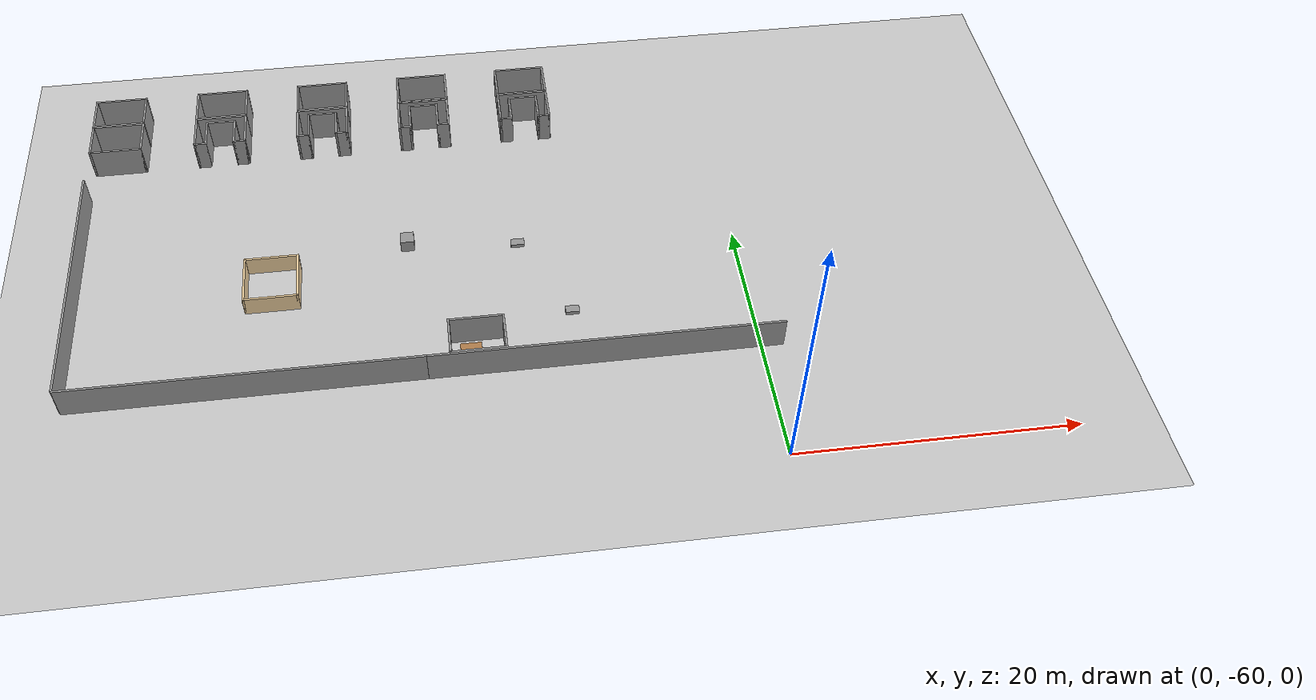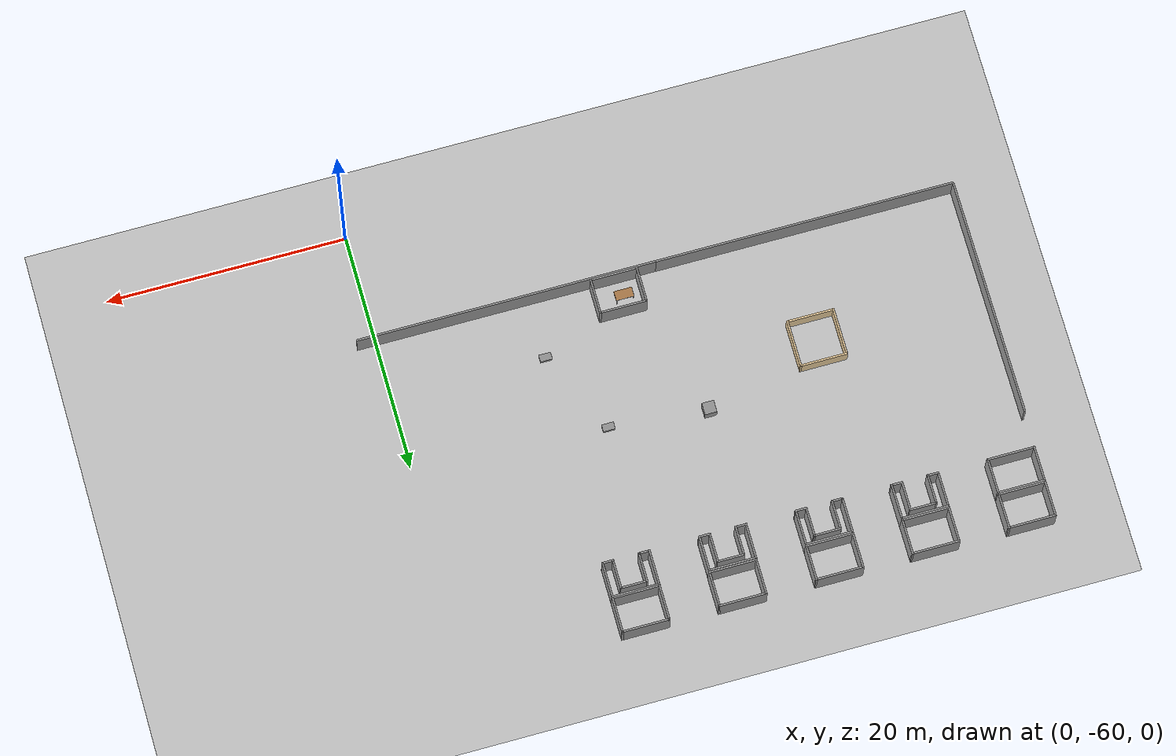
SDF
<sdf version="1.6">
 <world name="default">
  <model name="ground_plane">
   <static>1</static>
   <link name="link">
    <collision name="collision">
     <geometry><plane><normal>0 0 1</normal><size>105 105</size></plane></geometry>
     <surface>
      <contact><collide_bitmask>65535</collide_bitmask></contact>
      <friction><ode><mu>100</mu><mu2>50</mu2></ode></friction>
     </surface>
    </collision>
    <visual name="visual">
     <cast_shadows>0</cast_shadows>
     <geometry><plane><normal>0 0 1</normal><size>105 105</size></plane></geometry>
     <material>
      <script><uri>file://media/materials/scripts/gazebo.material</uri><name>Gazebo/Grey</name></script>
     </material>
    </visual>
   </link>
  </model>
  <model name="base3x4_26">
   <pose>-46.3516 -23.2162 0 0 -0 0</pose>
   <link name="Wall_18">
    <collision name="Wall_18_Collision">
     <geometry><box><size>3 0.15 2.5</size></box></geometry>
     <pose>0 0 1.25 0 -0 0</pose>
    </collision>
    <visual name="Wall_18_Visual">
     <pose>0 0 1.25 0 -0 0</pose>
     <geometry><box><size>3 0.15 2.5</size></box></geometry>
     <material>
      <script><uri>file://media/materials/scripts/gazebo.material</uri><name>Gazebo/Grey</name></script>
      <ambient>1 1 1 1</ambient>
     </material>
     <meta><layer>0</layer></meta>
    </visual>
    <pose>-1.925 -0 0 0 -0 -1.5708</pose>
   </link>
   <link name="Wall_19">
    <collision name="Wall_19_Collision">
     <geometry><box><size>4 0.15 2.5</size></box></geometry>
     <pose>0 0 1.25 0 -0 0</pose>
    </collision>
    <visual name="Wall_19_Visual">
     <pose>0 0 1.25 0 -0 0</pose>
     <geometry><box><size>4 0.15 2.5</size></box></geometry>
     <material>
      <script><uri>file://media/materials/scripts/gazebo.material</uri><name>Gazebo/Grey</name></script>
      <ambient>1 1 1 1</ambient>
     </material>
     <meta><layer>0</layer></meta>
    </visual>
    <pose>-0 -1.425 0 0 -0 0</pose>
   </link>
   <link name="Wall_20">
    <collision name="Wall_20_Collision">
     <geometry><box><size>3 0.15 2.5</size></box></geometry>
     <pose>0 0 1.25 0 -0 0</pose>
    </collision>
    <visual name="Wall_20_Visual">
     <pose>0 0 1.25 0 -0 0</pose>
     <geometry><box><size>3 0.15 2.5</size></box></geometry>
     <material>
      <script><uri>file://media/materials/scripts/gazebo.material</uri><name>Gazebo/Grey</name></script>
      <ambient>1 1 1 1</ambient>
     </material>
     <meta><layer>0</layer></meta>
    </visual>
    <pose>1.925 -0 0 0 -0 1.5708</pose>
   </link>
   <link name="Wall_21">
    <collision name="Wall_21_Collision">
     <geometry><box><size>4 0.15 2.5</size></box></geometry>
     <pose>0 0 1.25 0 -0 0</pose>
    </collision>
    <visual name="Wall_21_Visual">
     <pose>0 0 1.25 0 -0 0</pose>
     <geometry><box><size>4 0.15 2.5</size></box></geometry>
     <material>
      <script><uri>file://media/materials/scripts/gazebo.material</uri><name>Gazebo/Grey</name></script>
      <ambient>1 1 1 1</ambient>
     </material>
     <meta><layer>0</layer></meta>
    </visual>
    <pose>-0 1.425 0 0 -0 3.14159</pose>
   </link>
   <static>1</static>
  </model>
  <model name="base3x4_34">
   <pose>-38.3558 -23.2346 0 0 -0 0</pose>
   <link name="Wall_18">
    <collision name="Wall_18_Collision">
     <geometry><box><size>3 0.15 2.5</size></box></geometry>
     <pose>0 0 1.25 0 -0 0</pose>
    </collision>
    <visual name="Wall_18_Visual">
     <pose>0 0 1.25 0 -0 0</pose>
     <geometry><box><size>3 0.15 2.5</size></box></geometry>
     <material>
      <script><uri>file://media/materials/scripts/gazebo.material</uri><name>Gazebo/Grey</name></script>
      <ambient>1 1 1 1</ambient>
     </material>
     <meta><layer>0</layer></meta>
    </visual>
    <pose>-1.925 -0 0 0 -0 -1.5708</pose>
   </link>
   <link name="Wall_19">
    <collision name="Wall_19_Collision">
     <geometry><box><size>4 0.15 2.5</size></box></geometry>
     <pose>0 0 1.25 0 -0 0</pose>
    </collision>
    <visual name="Wall_19_Visual">
     <pose>0 0 1.25 0 -0 0</pose>
     <geometry><box><size>4 0.15 2.5</size></box></geometry>
     <material>
      <script><uri>file://media/materials/scripts/gazebo.material</uri><name>Gazebo/Grey</name></script>
      <ambient>1 1 1 1</ambient>
     </material>
     <meta><layer>0</layer></meta>
    </visual>
    <pose>-0 -1.425 0 0 -0 0</pose>
   </link>
   <link name="Wall_20">
    <collision name="Wall_20_Collision">
     <geometry><box><size>3 0.15 2.5</size></box></geometry>
     <pose>0 0 1.25 0 -0 0</pose>
    </collision>
    <visual name="Wall_20_Visual">
     <pose>0 0 1.25 0 -0 0</pose>
     <geometry><box><size>3 0.15 2.5</size></box></geometry>
     <material>
      <script><uri>file://media/materials/scripts/gazebo.material</uri><name>Gazebo/Grey</name></script>
      <ambient>1 1 1 1</ambient>
     </material>
     <meta><layer>0</layer></meta>
    </visual>
    <pose>1.925 -0 0 0 -0 1.5708</pose>
   </link>
   <link name="Wall_21">
    <collision name="Wall_21_Collision">
     <geometry><box><size>4 0.15 2.5</size></box></geometry>
     <pose>0 0 1.25 0 -0 0</pose>
    </collision>
    <visual name="Wall_21_Visual">
     <pose>0 0 1.25 0 -0 0</pose>
     <geometry><box><size>4 0.15 2.5</size></box></geometry>
     <material>
      <script><uri>file://media/materials/scripts/gazebo.material</uri><name>Gazebo/Grey</name></script>
      <ambient>1 1 1 1</ambient>
     </material>
     <meta><layer>0</layer></meta>
    </visual>
    <pose>-0 1.425 0 0 -0 3.14159</pose>
   </link>
   <static>1</static>
  </model>
  <model name="base3x4_31">
   <pose>-30.4046 -23.2308 0 0 -0 0</pose>
   <link name="Wall_18">
    <collision name="Wall_18_Collision">
     <geometry><box><size>3 0.15 2.5</size></box></geometry>
     <pose>0 0 1.25 0 -0 0</pose>
    </collision>
    <visual name="Wall_18_Visual">
     <pose>0 0 1.25 0 -0 0</pose>
     <geometry><box><size>3 0.15 2.5</size></box></geometry>
     <material>
      <script><uri>file://media/materials/scripts/gazebo.material</uri><name>Gazebo/Grey</name></script>
      <ambient>1 1 1 1</ambient>
     </material>
     <meta><layer>0</layer></meta>
    </visual>
    <pose>-1.925 -0 0 0 -0 -1.5708</pose>
   </link>
   <link name="Wall_19">
    <collision name="Wall_19_Collision">
     <geometry><box><size>4 0.15 2.5</size></box></geometry>
     <pose>0 0 1.25 0 -0 0</pose>
    </collision>
    <visual name="Wall_19_Visual">
     <pose>0 0 1.25 0 -0 0</pose>
     <geometry><box><size>4 0.15 2.5</size></box></geometry>
     <material>
      <script><uri>file://media/materials/scripts/gazebo.material</uri><name>Gazebo/Grey</name></script>
      <ambient>1 1 1 1</ambient>
     </material>
     <meta><layer>0</layer></meta>
    </visual>
    <pose>-0 -1.425 0 0 -0 0</pose>
   </link>
   <link name="Wall_20">
    <collision name="Wall_20_Collision">
     <geometry><box><size>3 0.15 2.5</size></box></geometry>
     <pose>0 0 1.25 0 -0 0</pose>
    </collision>
    <visual name="Wall_20_Visual">
     <pose>0 0 1.25 0 -0 0</pose>
     <geometry><box><size>3 0.15 2.5</size></box></geometry>
     <material>
      <script><uri>file://media/materials/scripts/gazebo.material</uri><name>Gazebo/Grey</name></script>
      <ambient>1 1 1 1</ambient>
     </material>
     <meta><layer>0</layer></meta>
    </visual>
    <pose>1.925 -0 0 0 -0 1.5708</pose>
   </link>
   <link name="Wall_21">
    <collision name="Wall_21_Collision">
     <geometry><box><size>4 0.15 2.5</size></box></geometry>
     <pose>0 0 1.25 0 -0 0</pose>
    </collision>
    <visual name="Wall_21_Visual">
     <pose>0 0 1.25 0 -0 0</pose>
     <geometry><box><size>4 0.15 2.5</size></box></geometry>
     <material>
      <script><uri>file://media/materials/scripts/gazebo.material</uri><name>Gazebo/Grey</name></script>
      <ambient>1 1 1 1</ambient>
     </material>
     <meta><layer>0</layer></meta>
    </visual>
    <pose>-0 1.425 0 0 -0 3.14159</pose>
   </link>
   <static>1</static>
  </model>
  <model name="unit_box_2">
   <pose>-24.3587 -38.1586 0.5 0 -0 0</pose>
   <link name="link">
    <inertial>
     <mass>1</mass>
     <inertia>
      <ixx>0.166667</ixx>
      <ixy>0</ixy>
      <ixz>0</ixz>
      <iyy>0.166667</iyy>
      <iyz>0</iyz>
      <izz>0.166667</izz>
     </inertia>
    </inertial>
    <collision name="collision"><geometry><box><size>1 1 1</size></box></geometry></collision>
    <visual name="visual">
     <geometry><box><size>1 1 1</size></box></geometry>
     <material>
      <script><name>Gazebo/Grey</name><uri>file://media/materials/scripts/gazebo.material</uri></script>
     </material>
    </visual>
   </link>
  </model>
  <model name="base3x4_53">
   <pose>-22.3998 -23.2187 0 0 -0 0</pose>
   <link name="Wall_18">
    <collision name="Wall_18_Collision">
     <geometry><box><size>3 0.15 2.5</size></box></geometry>
     <pose>0 0 1.25 0 -0 0</pose>
    </collision>
    <visual name="Wall_18_Visual">
     <pose>0 0 1.25 0 -0 0</pose>
     <geometry><box><size>3 0.15 2.5</size></box></geometry>
     <material>
      <script><uri>file://media/materials/scripts/gazebo.material</uri><name>Gazebo/Grey</name></script>
      <ambient>1 1 1 1</ambient>
     </material>
     <meta><layer>0</layer></meta>
    </visual>
    <pose>-1.925 -0 0 0 -0 -1.5708</pose>
   </link>
   <link name="Wall_19">
    <collision name="Wall_19_Collision">
     <geometry><box><size>4 0.15 2.5</size></box></geometry>
     <pose>0 0 1.25 0 -0 0</pose>
    </collision>
    <visual name="Wall_19_Visual">
     <pose>0 0 1.25 0 -0 0</pose>
     <geometry><box><size>4 0.15 2.5</size></box></geometry>
     <material>
      <script><uri>file://media/materials/scripts/gazebo.material</uri><name>Gazebo/Grey</name></script>
      <ambient>1 1 1 1</ambient>
     </material>
     <meta><layer>0</layer></meta>
    </visual>
    <pose>-0 -1.425 0 0 -0 0</pose>
   </link>
   <link name="Wall_20">
    <collision name="Wall_20_Collision">
     <geometry><box><size>3 0.15 2.5</size></box></geometry>
     <pose>0 0 1.25 0 -0 0</pose>
    </collision>
    <visual name="Wall_20_Visual">
     <pose>0 0 1.25 0 -0 0</pose>
     <geometry><box><size>3 0.15 2.5</size></box></geometry>
     <material>
      <script><uri>file://media/materials/scripts/gazebo.material</uri><name>Gazebo/Grey</name></script>
      <ambient>1 1 1 1</ambient>
     </material>
     <meta><layer>0</layer></meta>
    </visual>
    <pose>1.925 -0 0 0 -0 1.5708</pose>
   </link>
   <link name="Wall_21">
    <collision name="Wall_21_Collision">
     <geometry><box><size>4 0.15 2.5</size></box></geometry>
     <pose>0 0 1.25 0 -0 0</pose>
    </collision>
    <visual name="Wall_21_Visual">
     <pose>0 0 1.25 0 -0 0</pose>
     <geometry><box><size>4 0.15 2.5</size></box></geometry>
     <material>
      <script><uri>file://media/materials/scripts/gazebo.material</uri><name>Gazebo/Grey</name></script>
      <ambient>1 1 1 1</ambient>
     </material>
     <meta><layer>0</layer></meta>
    </visual>
    <pose>-0 1.425 0 0 -0 3.14159</pose>
   </link>
   <static>1</static>
  </model>
  <model name="base3x4_64">
   <pose>-14.4197 -23.2316 0 0 -0 0</pose>
   <link name="Wall_18">
    <collision name="Wall_18_Collision">
     <geometry><box><size>3 0.15 2.5</size></box></geometry>
     <pose>0 0 1.25 0 -0 0</pose>
    </collision>
    <visual name="Wall_18_Visual">
     <pose>0 0 1.25 0 -0 0</pose>
     <geometry><box><size>3 0.15 2.5</size></box></geometry>
     <material>
      <script><uri>file://media/materials/scripts/gazebo.material</uri><name>Gazebo/Grey</name></script>
      <ambient>1 1 1 1</ambient>
     </material>
     <meta><layer>0</layer></meta>
    </visual>
    <pose>-1.925 -0 0 0 -0 -1.5708</pose>
   </link>
   <link name="Wall_19">
    <collision name="Wall_19_Collision">
     <geometry><box><size>4 0.15 2.5</size></box></geometry>
     <pose>0 0 1.25 0 -0 0</pose>
    </collision>
    <visual name="Wall_19_Visual">
     <pose>0 0 1.25 0 -0 0</pose>
     <geometry><box><size>4 0.15 2.5</size></box></geometry>
     <material>
      <script><uri>file://media/materials/scripts/gazebo.material</uri><name>Gazebo/Grey</name></script>
      <ambient>1 1 1 1</ambient>
     </material>
     <meta><layer>0</layer></meta>
    </visual>
    <pose>-0 -1.425 0 0 -0 0</pose>
   </link>
   <link name="Wall_20">
    <collision name="Wall_20_Collision">
     <geometry><box><size>3 0.15 2.5</size></box></geometry>
     <pose>0 0 1.25 0 -0 0</pose>
    </collision>
    <visual name="Wall_20_Visual">
     <pose>0 0 1.25 0 -0 0</pose>
     <geometry><box><size>3 0.15 2.5</size></box></geometry>
     <material>
      <script><uri>file://media/materials/scripts/gazebo.material</uri><name>Gazebo/Grey</name></script>
      <ambient>1 1 1 1</ambient>
     </material>
     <meta><layer>0</layer></meta>
    </visual>
    <pose>1.925 -0 0 0 -0 1.5708</pose>
   </link>
   <link name="Wall_21">
    <collision name="Wall_21_Collision">
     <geometry><box><size>4 0.15 2.5</size></box></geometry>
     <pose>0 0 1.25 0 -0 0</pose>
    </collision>
    <visual name="Wall_21_Visual">
     <pose>0 0 1.25 0 -0 0</pose>
     <geometry><box><size>4 0.15 2.5</size></box></geometry>
     <material>
      <script><uri>file://media/materials/scripts/gazebo.material</uri><name>Gazebo/Grey</name></script>
      <ambient>1 1 1 1</ambient>
     </material>
     <meta><layer>0</layer></meta>
    </visual>
    <pose>-0 1.425 0 0 -0 3.14159</pose>
   </link>
   <static>1</static>
  </model>
  <model name="base3x4_37">
   <pose>-19.8731 -49.167 0 0 -0 0</pose>
   <link name="Wall_18">
    <collision name="Wall_18_Collision">
     <geometry><box><size>3 0.15 2.5</size></box></geometry>
     <pose>0 0 1.25 0 -0 0</pose>
    </collision>
    <visual name="Wall_18_Visual">
     <pose>0 0 1.25 0 -0 0</pose>
     <geometry><box><size>3 0.15 2.5</size></box></geometry>
     <material>
      <script><uri>file://media/materials/scripts/gazebo.material</uri><name>Gazebo/Grey</name></script>
      <ambient>1 1 1 1</ambient>
     </material>
     <meta><layer>0</layer></meta>
    </visual>
    <pose>-1.925 -0 0 0 -0 -1.5708</pose>
   </link>
   <link name="Wall_19">
    <collision name="Wall_19_Collision">
     <geometry><box><size>4 0.15 2.5</size></box></geometry>
     <pose>0 0 1.25 0 -0 0</pose>
    </collision>
    <visual name="Wall_19_Visual">
     <pose>0 0 1.25 0 -0 0</pose>
     <geometry><box><size>4 0.15 2.5</size></box></geometry>
     <material>
      <script><uri>file://media/materials/scripts/gazebo.material</uri><name>Gazebo/Grey</name></script>
      <ambient>1 1 1 1</ambient>
     </material>
     <meta><layer>0</layer></meta>
    </visual>
    <pose>-0 -1.425 0 0 -0 0</pose>
   </link>
   <link name="Wall_20">
    <collision name="Wall_20_Collision">
     <geometry><box><size>3 0.15 2.5</size></box></geometry>
     <pose>0 0 1.25 0 -0 0</pose>
    </collision>
    <visual name="Wall_20_Visual">
     <pose>0 0 1.25 0 -0 0</pose>
     <geometry><box><size>3 0.15 2.5</size></box></geometry>
     <material>
      <script><uri>file://media/materials/scripts/gazebo.material</uri><name>Gazebo/Grey</name></script>
      <ambient>1 1 1 1</ambient>
     </material>
     <meta><layer>0</layer></meta>
    </visual>
    <pose>1.925 -0 0 0 -0 1.5708</pose>
   </link>
   <link name="Wall_21">
    <collision name="Wall_21_Collision">
     <geometry><box><size>4 0.15 2.5</size></box></geometry>
     <pose>0 0 1.25 0 -0 0</pose>
    </collision>
    <visual name="Wall_21_Visual">
     <pose>0 0 1.25 0 -0 0</pose>
     <geometry><box><size>4 0.15 2.5</size></box></geometry>
     <material>
      <script><uri>file://media/materials/scripts/gazebo.material</uri><name>Gazebo/Grey</name></script>
      <ambient>1 1 1 1</ambient>
     </material>
     <meta><layer>0</layer></meta>
    </visual>
    <pose>-0 1.425 0 0 -0 3.14159</pose>
   </link>
   <static>1</static>
  </model>
  <model name="wall_25m_1">
   <pose>-35.9126 -50.7151 0 0 -0 0</pose>
   <link name="Wall_28">
    <collision name="Wall_28_Collision">
     <geometry><box><size>25 0.15 2.5</size></box></geometry>
     <pose>0 0 1.25 0 -0 0</pose>
    </collision>
    <visual name="Wall_28_Visual">
     <pose>0 0 1.25 0 -0 0</pose>
     <geometry><box><size>25 0.15 2.5</size></box></geometry>
     <material>
      <script><uri>file://media/materials/scripts/gazebo.material</uri><name>Gazebo/Grey</name></script>
      <ambient>1 1 1 1</ambient>
     </material>
     <meta><layer>0</layer></meta>
    </visual>
   </link>
   <static>1</static>
  </model>
  <model name="wall_25m_7">
   <pose>-10.9546 -50.7217 0 0 -0 0</pose>
   <link name="Wall_28">
    <collision name="Wall_28_Collision">
     <geometry><box><size>25 0.15 2.5</size></box></geometry>
     <pose>0 0 1.25 0 -0 0</pose>
    </collision>
    <visual name="Wall_28_Visual">
     <pose>0 0 1.25 0 -0 0</pose>
     <geometry><box><size>25 0.15 2.5</size></box></geometry>
     <material>
      <script><uri>file://media/materials/scripts/gazebo.material</uri><name>Gazebo/Grey</name></script>
      <ambient>1 1 1 1</ambient>
     </material>
     <meta><layer>0</layer></meta>
    </visual>
   </link>
   <static>1</static>
  </model>
  <model name="table_14">
   <static>1</static>
   <link name="link">
    <collision name="surface">
     <pose>0 0 1 0 -0 0</pose>
     <geometry><box><size>1.5 0.8 0.03</size></box></geometry>
     <surface><friction><ode><mu>0.6</mu><mu2>0.6</mu2></ode></friction></surface>
    </collision>
    <visual name="visual1">
     <pose>0 0 1 0 -0 0</pose>
     <geometry><box><size>1.5 0.8 0.03</size></box></geometry>
     <material>
      <script><uri>file://media/materials/scripts/gazebo.material</uri><name>Gazebo/Wood</name></script>
     </material>
    </visual>
    <collision name="front_left_leg">
     <pose>0.68 0.38 0.5 0 -0 0</pose>
     <geometry><cylinder><radius>0.02</radius><length>1</length></cylinder></geometry>
    </collision>
    <visual name="front_left_leg">
     <pose>0.68 0.38 0.5 0 -0 0</pose>
     <geometry><cylinder><radius>0.02</radius><length>1</length></cylinder></geometry>
     <material>
      <script><uri>file://media/materials/scripts/gazebo.material</uri><name>Gazebo/Grey</name></script>
     </material>
    </visual>
    <collision name="front_right_leg">
     <pose>0.68 -0.38 0.5 0 -0 0</pose>
     <geometry><cylinder><radius>0.02</radius><length>1</length></cylinder></geometry>
    </collision>
    <visual name="front_right_leg">
     <pose>0.68 -0.38 0.5 0 -0 0</pose>
     <geometry><cylinder><radius>0.02</radius><length>1</length></cylinder></geometry>
     <material>
      <script><uri>file://media/materials/scripts/gazebo.material</uri><name>Gazebo/Grey</name></script>
     </material>
    </visual>
    <collision name="back_right_leg">
     <pose>-0.68 -0.38 0.5 0 -0 0</pose>
     <geometry><cylinder><radius>0.02</radius><length>1</length></cylinder></geometry>
    </collision>
    <visual name="back_right_leg">
     <pose>-0.68 -0.38 0.5 0 -0 0</pose>
     <geometry><cylinder><radius>0.02</radius><length>1</length></cylinder></geometry>
     <material>
      <script><uri>file://media/materials/scripts/gazebo.material</uri><name>Gazebo/Grey</name></script>
     </material>
    </visual>
    <collision name="back_left_leg">
     <pose>-0.68 0.38 0.5 0 -0 0</pose>
     <geometry><cylinder><radius>0.02</radius><length>1</length></cylinder></geometry>
    </collision>
    <visual name="back_left_leg">
     <pose>-0.68 0.38 0.5 0 -0 0</pose>
     <geometry><cylinder><radius>0.02</radius><length>1</length></cylinder></geometry>
     <material>
      <script><uri>file://media/materials/scripts/gazebo.material</uri><name>Gazebo/Grey</name></script>
     </material>
    </visual>
   </link>
   <pose>-20.3507 -49.1946 0 0 -0 0</pose>
  </model>
  <model name="wall_v20m_7">
   <pose>-48.4151 -40.6667 0 0 -0 0</pose>
   <link name="Wall_35">
    <collision name="Wall_35_Collision">
     <geometry><box><size>20 0.15 2.5</size></box></geometry>
     <pose>0 0 1.25 0 -0 0</pose>
    </collision>
    <visual name="Wall_35_Visual">
     <pose>0 0 1.25 0 -0 0</pose>
     <geometry><box><size>20 0.15 2.5</size></box></geometry>
     <material>
      <script><uri>file://media/materials/scripts/gazebo.material</uri><name>Gazebo/Grey</name></script>
      <ambient>1 1 1 1</ambient>
     </material>
     <meta><layer>0</layer></meta>
    </visual>
    <pose>0 -0 0 0 -0 -1.5708</pose>
   </link>
   <static>1</static>
  </model>
  <model name="box4x4x1.5_0">
   <pose>-34.2755 -41.3514 0 0 -0 0</pose>
   <link name="Wall_5">
    <collision name="Wall_5_Collision">
     <geometry><box><size>4 0.15 1.5</size></box></geometry>
     <pose>0 0 0.75 0 -0 0</pose>
    </collision>
    <visual name="Wall_5_Visual">
     <pose>0 0 0.75 0 -0 0</pose>
     <geometry><box><size>4 0.15 1.5</size></box></geometry>
     <material>
      <script><uri>file://media/materials/scripts/gazebo.material</uri><name>Gazebo/Grey</name></script>
      <ambient>0.921569 0.807843 0.615686 1</ambient>
     </material>
     <meta><layer>0</layer></meta>
    </visual>
    <pose>-1.925 -0 0 0 -0 -1.5708</pose>
   </link>
   <link name="Wall_6">
    <collision name="Wall_6_Collision">
     <geometry><box><size>4 0.15 1.5</size></box></geometry>
     <pose>0 0 0.75 0 -0 0</pose>
    </collision>
    <visual name="Wall_6_Visual">
     <pose>0 0 0.75 0 -0 0</pose>
     <geometry><box><size>4 0.15 1.5</size></box></geometry>
     <material>
      <script><uri>file://media/materials/scripts/gazebo.material</uri><name>Gazebo/Grey</name></script>
      <ambient>0.921569 0.807843 0.615686 1</ambient>
     </material>
     <meta><layer>0</layer></meta>
    </visual>
    <pose>0 -1.925 0 0 -0 0</pose>
   </link>
   <link name="Wall_7">
    <collision name="Wall_7_Collision">
     <geometry><box><size>4 0.15 1.5</size></box></geometry>
     <pose>0 0 0.75 0 -0 0</pose>
    </collision>
    <visual name="Wall_7_Visual">
     <pose>0 0 0.75 0 -0 0</pose>
     <geometry><box><size>4 0.15 1.5</size></box></geometry>
     <material>
      <script><uri>file://media/materials/scripts/gazebo.material</uri><name>Gazebo/Grey</name></script>
      <ambient>0.921569 0.807843 0.615686 1</ambient>
     </material>
     <meta><layer>0</layer></meta>
    </visual>
    <pose>1.925 -0 0 0 -0 1.5708</pose>
   </link>
   <link name="Wall_8">
    <collision name="Wall_8_Collision">
     <geometry><box><size>4 0.15 1.5</size></box></geometry>
     <pose>0 0 0.75 0 -0 0</pose>
    </collision>
    <visual name="Wall_8_Visual">
     <pose>0 0 0.75 0 -0 0</pose>
     <geometry><box><size>4 0.15 1.5</size></box></geometry>
     <material>
      <script><uri>file://media/materials/scripts/gazebo.material</uri><name>Gazebo/Grey</name></script>
      <ambient>0.921569 0.807843 0.615686 1</ambient>
     </material>
     <meta><layer>0</layer></meta>
    </visual>
    <pose>0 1.925 0 0 -0 3.14159</pose>
   </link>
   <static>1</static>
  </model>
  <model name="unit_box_100x60x30cm">
   <link name="link">
    <inertial>
     <mass>1</mass>
     <inertia>
      <ixx>0.166667</ixx>
      <ixy>0</ixy>
      <ixz>0</ixz>
      <iyy>0.166667</iyy>
      <iyz>0</iyz>
      <izz>0.166667</izz>
     </inertia>
    </inertial>
    <visual name="visual">
     <geometry><box><size>1 0.6 0.3</size></box></geometry>
     <material>
      <script><name>Gazebo/Grey</name><uri>file://media/materials/scripts/gazebo.material</uri></script>
      <shader type="vertex"><normal_map>__default__</normal_map></shader>
      <ambient>0.3 0.3 0.3 1</ambient>
      <diffuse>0.7 0.7 0.7 1</diffuse>
      <specular>0.01 0.01 0.01 1</specular>
      <emissive>0 0 0 1</emissive>
     </material>
    </visual>
    <collision name="collision">
     <geometry><box><size>1 0.6 0.3</size></box></geometry>
     <surface>
      <friction>
       <ode><mu>1</mu><mu2>1</mu2><fdir1>0 0 0</fdir1><slip1>0</slip1><slip2>0</slip2></ode>
       <torsional>
        <coefficient>1</coefficient>
        <patch_radius>0</patch_radius>
        <surface_radius>0</surface_radius>
        <use_patch_radius>1</use_patch_radius>
        <ode><slip>0</slip></ode>
       </torsional>
      </friction>
      <bounce><restitution_coefficient>0</restitution_coefficient><threshold>1e+06</threshold></bounce>
      <contact>
       <collide_without_contact>0</collide_without_contact>
       <collide_without_contact_bitmask>1</collide_without_contact_bitmask>
       <collide_bitmask>1</collide_bitmask>
       <ode>
        <soft_cfm>0</soft_cfm>
        <soft_erp>0.2</soft_erp>
        <kp>1e+13</kp>
        <kd>1</kd>
        <max_vel>0.01</max_vel>
        <min_depth>0</min_depth>
       </ode>
       <bullet>
        <split_impulse>1</split_impulse>
        <split_impulse_penetration_threshold>-0.01</split_impulse_penetration_threshold>
        <soft_cfm>0</soft_cfm>
        <soft_erp>0.2</soft_erp>
        <kp>1e+13</kp>
        <kd>1</kd>
       </bullet>
      </contact>
     </surface>
    </collision>
   </link>
   <static>0</static>
   <pose>-12.88 -45.9622 0.15 0 -0 0</pose>
  </model>
  <model name="unit_box_100x60x30cm_0">
   <link name="link">
    <inertial>
     <mass>1</mass>
     <inertia>
      <ixx>0.166667</ixx>
      <ixy>0</ixy>
      <ixz>0</ixz>
      <iyy>0.166667</iyy>
      <iyz>0</iyz>
      <izz>0.166667</izz>
     </inertia>
    </inertial>
    <visual name="visual">
     <geometry><box><size>1 0.6 0.3</size></box></geometry>
     <material>
      <script><name>Gazebo/Grey</name><uri>file://media/materials/scripts/gazebo.material</uri></script>
      <shader type="vertex"><normal_map>__default__</normal_map></shader>
      <ambient>0.3 0.3 0.3 1</ambient>
      <diffuse>0.7 0.7 0.7 1</diffuse>
      <specular>0.01 0.01 0.01 1</specular>
      <emissive>0 0 0 1</emissive>
     </material>
    </visual>
    <collision name="collision">
     <geometry><box><size>1 0.6 0.3</size></box></geometry>
     <surface>
      <friction>
       <ode><mu>1</mu><mu2>1</mu2><fdir1>0 0 0</fdir1><slip1>0</slip1><slip2>0</slip2></ode>
       <torsional>
        <coefficient>1</coefficient>
        <patch_radius>0</patch_radius>
        <surface_radius>0</surface_radius>
        <use_patch_radius>1</use_patch_radius>
        <ode><slip>0</slip></ode>
       </torsional>
      </friction>
      <bounce><restitution_coefficient>0</restitution_coefficient><threshold>1e+06</threshold></bounce>
      <contact>
       <collide_without_contact>0</collide_without_contact>
       <collide_without_contact_bitmask>1</collide_without_contact_bitmask>
       <collide_bitmask>1</collide_bitmask>
       <ode>
        <soft_cfm>0</soft_cfm>
        <soft_erp>0.2</soft_erp>
        <kp>1e+13</kp>
        <kd>1</kd>
        <max_vel>0.01</max_vel>
        <min_depth>0</min_depth>
       </ode>
       <bullet>
        <split_impulse>1</split_impulse>
        <split_impulse_penetration_threshold>-0.01</split_impulse_penetration_threshold>
        <soft_cfm>0</soft_cfm>
        <soft_erp>0.2</soft_erp>
        <kp>1e+13</kp>
        <kd>1</kd>
       </bullet>
      </contact>
     </surface>
    </collision>
   </link>
   <static>0</static>
   <pose>-16.1827 -38.9703 0.15 0 -0 0</pose>
  </model>
  <model name="base3x4">
   <pose>-46.3496 -26.2095 0 0 -0 0</pose>
   <link name="Wall_18">
    <collision name="Wall_18_Collision">
     <geometry><box><size>3 0.15 2.5</size></box></geometry>
     <pose>0 0 1.25 0 -0 0</pose>
    </collision>
    <visual name="Wall_18_Visual">
     <pose>0 0 1.25 0 -0 0</pose>
     <geometry><box><size>3 0.15 2.5</size></box></geometry>
     <material>
      <script><uri>file://media/materials/scripts/gazebo.material</uri><name>Gazebo/Grey</name></script>
      <ambient>1 1 1 1</ambient>
     </material>
     <meta><layer>0</layer></meta>
    </visual>
    <pose>-1.925 -0 0 0 -0 -1.5708</pose>
   </link>
   <link name="Wall_19">
    <collision name="Wall_19_Collision">
     <geometry><box><size>4 0.15 2.5</size></box></geometry>
     <pose>0 0 1.25 0 -0 0</pose>
    </collision>
    <visual name="Wall_19_Visual">
     <pose>0 0 1.25 0 -0 0</pose>
     <geometry><box><size>4 0.15 2.5</size></box></geometry>
     <material>
      <script><uri>file://media/materials/scripts/gazebo.material</uri><name>Gazebo/Grey</name></script>
      <ambient>1 1 1 1</ambient>
     </material>
     <meta><layer>0</layer></meta>
    </visual>
    <pose>-0 -1.425 0 0 -0 0</pose>
   </link>
   <link name="Wall_20">
    <collision name="Wall_20_Collision">
     <geometry><box><size>3 0.15 2.5</size></box></geometry>
     <pose>0 0 1.25 0 -0 0</pose>
    </collision>
    <visual name="Wall_20_Visual">
     <pose>0 0 1.25 0 -0 0</pose>
     <geometry><box><size>3 0.15 2.5</size></box></geometry>
     <material>
      <script><uri>file://media/materials/scripts/gazebo.material</uri><name>Gazebo/Grey</name></script>
      <ambient>1 1 1 1</ambient>
     </material>
     <meta><layer>0</layer></meta>
    </visual>
    <pose>1.925 -0 0 0 -0 1.5708</pose>
   </link>
   <link name="Wall_21">
    <collision name="Wall_21_Collision">
     <geometry><box><size>4 0.15 2.5</size></box></geometry>
     <pose>0 0 1.25 0 -0 0</pose>
    </collision>
    <visual name="Wall_21_Visual">
     <pose>0 0 1.25 0 -0 0</pose>
     <geometry><box><size>4 0.15 2.5</size></box></geometry>
     <material>
      <script><uri>file://media/materials/scripts/gazebo.material</uri><name>Gazebo/Grey</name></script>
      <ambient>1 1 1 1</ambient>
     </material>
     <meta><layer>0</layer></meta>
    </visual>
    <pose>-0 1.425 0 0 -0 3.14159</pose>
   </link>
   <static>1</static>
  </model>
  <model name="box_u_v4X3X2.5">
   <pose>-14.4253 -26.2059 0 0 -0 0</pose>
   <link name="Wall_30">
    <collision name="Wall_30_Collision">
     <geometry><box><size>3 0.15 2.5</size></box></geometry>
     <pose>0 0 1.25 0 -0 0</pose>
    </collision>
    <visual name="Wall_30_Visual">
     <pose>0 0 1.25 0 -0 0</pose>
     <geometry><box><size>3 0.15 2.5</size></box></geometry>
     <material>
      <script><uri>file://media/materials/scripts/gazebo.material</uri><name>Gazebo/Grey</name></script>
      <ambient>1 1 1 1</ambient>
     </material>
     <meta><layer>0</layer></meta>
    </visual>
    <pose>-1.925 0 0 0 -0 -1.5708</pose>
   </link>
   <link name="Wall_32">
    <collision name="Wall_32_Collision">
     <geometry><box><size>4 0.15 2.5</size></box></geometry>
     <pose>0 0 1.25 0 -0 0</pose>
    </collision>
    <visual name="Wall_32_Visual">
     <pose>0 0 1.25 0 -0 0</pose>
     <geometry><box><size>4 0.15 2.5</size></box></geometry>
     <material>
      <script><uri>file://media/materials/scripts/gazebo.material</uri><name>Gazebo/Grey</name></script>
      <ambient>1 1 1 1</ambient>
     </material>
     <meta><layer>0</layer></meta>
    </visual>
    <pose>0 1.425 0 0 -0 0</pose>
   </link>
   <link name="Wall_33">
    <collision name="Wall_33_Collision">
     <geometry><box><size>3 0.15 2.5</size></box></geometry>
     <pose>0 0 1.25 0 -0 0</pose>
    </collision>
    <visual name="Wall_33_Visual">
     <pose>0 0 1.25 0 -0 0</pose>
     <geometry><box><size>3 0.15 2.5</size></box></geometry>
     <material>
      <script><uri>file://media/materials/scripts/gazebo.material</uri><name>Gazebo/Grey</name></script>
      <ambient>1 1 1 1</ambient>
     </material>
     <meta><layer>0</layer></meta>
    </visual>
    <pose>1.925 0 0 0 -0 -1.5708</pose>
   </link>
   <link name="Wall_34">
    <collision name="Wall_34_Collision">
     <geometry><box><size>1 0.15 2.5</size></box></geometry>
     <pose>0 0 1.25 0 -0 0</pose>
    </collision>
    <visual name="Wall_34_Visual">
     <pose>0 0 1.25 0 -0 0</pose>
     <geometry><box><size>1 0.15 2.5</size></box></geometry>
     <material>
      <script><uri>file://media/materials/scripts/gazebo.material</uri><name>Gazebo/Grey</name></script>
      <ambient>1 1 1 1</ambient>
     </material>
     <meta><layer>0</layer></meta>
    </visual>
    <pose>1.5 -1.425 0 0 -0 3.14159</pose>
   </link>
   <link name="Wall_35">
    <collision name="Wall_35_Collision">
     <geometry><box><size>2.5 0.15 2.5</size></box></geometry>
     <pose>0 0 1.25 0 -0 0</pose>
    </collision>
    <visual name="Wall_35_Visual">
     <pose>0 0 1.25 0 -0 0</pose>
     <geometry><box><size>2.5 0.15 2.5</size></box></geometry>
     <material>
      <script><uri>file://media/materials/scripts/gazebo.material</uri><name>Gazebo/Grey</name></script>
      <ambient>1 1 1 1</ambient>
     </material>
     <meta><layer>0</layer></meta>
    </visual>
    <pose>1.075 -0.25 0 0 -0 1.5708</pose>
   </link>
   <link name="Wall_37">
    <collision name="Wall_37_Collision">
     <geometry><box><size>1 0.15 2.5</size></box></geometry>
     <pose>0 0 1.25 0 -0 0</pose>
    </collision>
    <visual name="Wall_37_Visual">
     <pose>0 0 1.25 0 -0 0</pose>
     <geometry><box><size>1 0.15 2.5</size></box></geometry>
     <material>
      <script><uri>file://media/materials/scripts/gazebo.material</uri><name>Gazebo/Grey</name></script>
      <ambient>1 1 1 1</ambient>
     </material>
     <meta><layer>0</layer></meta>
    </visual>
    <pose>-1.5 -1.425 0 0 -0 0</pose>
   </link>
   <link name="Wall_38">
    <collision name="Wall_38_Collision">
     <geometry><box><size>2.5 0.15 2.5</size></box></geometry>
     <pose>0 0 1.25 0 -0 0</pose>
    </collision>
    <visual name="Wall_38_Visual">
     <pose>0 0 1.25 0 -0 0</pose>
     <geometry><box><size>2.5 0.15 2.5</size></box></geometry>
     <material>
      <script><uri>file://media/materials/scripts/gazebo.material</uri><name>Gazebo/Grey</name></script>
      <ambient>1 1 1 1</ambient>
     </material>
     <meta><layer>0</layer></meta>
    </visual>
    <pose>-1.075 -0.25 0 0 -0 1.5708</pose>
   </link>
   <link name="Wall_39">
    <collision name="Wall_39_Collision">
     <geometry><box><size>2.3 0.15 2.5</size></box></geometry>
     <pose>0 0 1.25 0 -0 0</pose>
    </collision>
    <visual name="Wall_39_Visual">
     <pose>0 0 1.25 0 -0 0</pose>
     <geometry><box><size>2.3 0.15 2.5</size></box></geometry>
     <material>
      <script><uri>file://media/materials/scripts/gazebo.material</uri><name>Gazebo/Grey</name></script>
      <ambient>1 1 1 1</ambient>
     </material>
     <meta><layer>0</layer></meta>
    </visual>
    <pose>0 0.925 0 0 -0 0</pose>
   </link>
   <static>1</static>
  </model>
  <model name="box_u_v4X3X2.5_0">
   <pose>-22.4236 -26.2361 0 0 -0 0</pose>
   <link name="Wall_30">
    <collision name="Wall_30_Collision">
     <geometry><box><size>3 0.15 2.5</size></box></geometry>
     <pose>0 0 1.25 0 -0 0</pose>
    </collision>
    <visual name="Wall_30_Visual">
     <pose>0 0 1.25 0 -0 0</pose>
     <geometry><box><size>3 0.15 2.5</size></box></geometry>
     <material>
      <script><uri>file://media/materials/scripts/gazebo.material</uri><name>Gazebo/Grey</name></script>
      <ambient>1 1 1 1</ambient>
     </material>
     <meta><layer>0</layer></meta>
    </visual>
    <pose>-1.925 0 0 0 -0 -1.5708</pose>
   </link>
   <link name="Wall_32">
    <collision name="Wall_32_Collision">
     <geometry><box><size>4 0.15 2.5</size></box></geometry>
     <pose>0 0 1.25 0 -0 0</pose>
    </collision>
    <visual name="Wall_32_Visual">
     <pose>0 0 1.25 0 -0 0</pose>
     <geometry><box><size>4 0.15 2.5</size></box></geometry>
     <material>
      <script><uri>file://media/materials/scripts/gazebo.material</uri><name>Gazebo/Grey</name></script>
      <ambient>1 1 1 1</ambient>
     </material>
     <meta><layer>0</layer></meta>
    </visual>
    <pose>0 1.425 0 0 -0 0</pose>
   </link>
   <link name="Wall_33">
    <collision name="Wall_33_Collision">
     <geometry><box><size>3 0.15 2.5</size></box></geometry>
     <pose>0 0 1.25 0 -0 0</pose>
    </collision>
    <visual name="Wall_33_Visual">
     <pose>0 0 1.25 0 -0 0</pose>
     <geometry><box><size>3 0.15 2.5</size></box></geometry>
     <material>
      <script><uri>file://media/materials/scripts/gazebo.material</uri><name>Gazebo/Grey</name></script>
      <ambient>1 1 1 1</ambient>
     </material>
     <meta><layer>0</layer></meta>
    </visual>
    <pose>1.925 0 0 0 -0 -1.5708</pose>
   </link>
   <link name="Wall_34">
    <collision name="Wall_34_Collision">
     <geometry><box><size>1 0.15 2.5</size></box></geometry>
     <pose>0 0 1.25 0 -0 0</pose>
    </collision>
    <visual name="Wall_34_Visual">
     <pose>0 0 1.25 0 -0 0</pose>
     <geometry><box><size>1 0.15 2.5</size></box></geometry>
     <material>
      <script><uri>file://media/materials/scripts/gazebo.material</uri><name>Gazebo/Grey</name></script>
      <ambient>1 1 1 1</ambient>
     </material>
     <meta><layer>0</layer></meta>
    </visual>
    <pose>1.5 -1.425 0 0 -0 3.14159</pose>
   </link>
   <link name="Wall_35">
    <collision name="Wall_35_Collision">
     <geometry><box><size>2.5 0.15 2.5</size></box></geometry>
     <pose>0 0 1.25 0 -0 0</pose>
    </collision>
    <visual name="Wall_35_Visual">
     <pose>0 0 1.25 0 -0 0</pose>
     <geometry><box><size>2.5 0.15 2.5</size></box></geometry>
     <material>
      <script><uri>file://media/materials/scripts/gazebo.material</uri><name>Gazebo/Grey</name></script>
      <ambient>1 1 1 1</ambient>
     </material>
     <meta><layer>0</layer></meta>
    </visual>
    <pose>1.075 -0.25 0 0 -0 1.5708</pose>
   </link>
   <link name="Wall_37">
    <collision name="Wall_37_Collision">
     <geometry><box><size>1 0.15 2.5</size></box></geometry>
     <pose>0 0 1.25 0 -0 0</pose>
    </collision>
    <visual name="Wall_37_Visual">
     <pose>0 0 1.25 0 -0 0</pose>
     <geometry><box><size>1 0.15 2.5</size></box></geometry>
     <material>
      <script><uri>file://media/materials/scripts/gazebo.material</uri><name>Gazebo/Grey</name></script>
      <ambient>1 1 1 1</ambient>
     </material>
     <meta><layer>0</layer></meta>
    </visual>
    <pose>-1.5 -1.425 0 0 -0 0</pose>
   </link>
   <link name="Wall_38">
    <collision name="Wall_38_Collision">
     <geometry><box><size>2.5 0.15 2.5</size></box></geometry>
     <pose>0 0 1.25 0 -0 0</pose>
    </collision>
    <visual name="Wall_38_Visual">
     <pose>0 0 1.25 0 -0 0</pose>
     <geometry><box><size>2.5 0.15 2.5</size></box></geometry>
     <material>
      <script><uri>file://media/materials/scripts/gazebo.material</uri><name>Gazebo/Grey</name></script>
      <ambient>1 1 1 1</ambient>
     </material>
     <meta><layer>0</layer></meta>
    </visual>
    <pose>-1.075 -0.25 0 0 -0 1.5708</pose>
   </link>
   <link name="Wall_39">
    <collision name="Wall_39_Collision">
     <geometry><box><size>2.3 0.15 2.5</size></box></geometry>
     <pose>0 0 1.25 0 -0 0</pose>
    </collision>
    <visual name="Wall_39_Visual">
     <pose>0 0 1.25 0 -0 0</pose>
     <geometry><box><size>2.3 0.15 2.5</size></box></geometry>
     <material>
      <script><uri>file://media/materials/scripts/gazebo.material</uri><name>Gazebo/Grey</name></script>
      <ambient>1 1 1 1</ambient>
     </material>
     <meta><layer>0</layer></meta>
    </visual>
    <pose>0 0.925 0 0 -0 0</pose>
   </link>
   <static>1</static>
  </model>
  <model name="box_u_v4X3X2.5_2">
   <pose>-38.3538 -26.2285 0 0 -0 0</pose>
   <link name="Wall_30">
    <collision name="Wall_30_Collision">
     <geometry><box><size>3 0.15 2.5</size></box></geometry>
     <pose>0 0 1.25 0 -0 0</pose>
    </collision>
    <visual name="Wall_30_Visual">
     <pose>0 0 1.25 0 -0 0</pose>
     <geometry><box><size>3 0.15 2.5</size></box></geometry>
     <material>
      <script><uri>file://media/materials/scripts/gazebo.material</uri><name>Gazebo/Grey</name></script>
      <ambient>1 1 1 1</ambient>
     </material>
     <meta><layer>0</layer></meta>
    </visual>
    <pose>-1.925 0 0 0 -0 -1.5708</pose>
   </link>
   <link name="Wall_32">
    <collision name="Wall_32_Collision">
     <geometry><box><size>4 0.15 2.5</size></box></geometry>
     <pose>0 0 1.25 0 -0 0</pose>
    </collision>
    <visual name="Wall_32_Visual">
     <pose>0 0 1.25 0 -0 0</pose>
     <geometry><box><size>4 0.15 2.5</size></box></geometry>
     <material>
      <script><uri>file://media/materials/scripts/gazebo.material</uri><name>Gazebo/Grey</name></script>
      <ambient>1 1 1 1</ambient>
     </material>
     <meta><layer>0</layer></meta>
    </visual>
    <pose>0 1.425 0 0 -0 0</pose>
   </link>
   <link name="Wall_33">
    <collision name="Wall_33_Collision">
     <geometry><box><size>3 0.15 2.5</size></box></geometry>
     <pose>0 0 1.25 0 -0 0</pose>
    </collision>
    <visual name="Wall_33_Visual">
     <pose>0 0 1.25 0 -0 0</pose>
     <geometry><box><size>3 0.15 2.5</size></box></geometry>
     <material>
      <script><uri>file://media/materials/scripts/gazebo.material</uri><name>Gazebo/Grey</name></script>
      <ambient>1 1 1 1</ambient>
     </material>
     <meta><layer>0</layer></meta>
    </visual>
    <pose>1.925 0 0 0 -0 -1.5708</pose>
   </link>
   <link name="Wall_34">
    <collision name="Wall_34_Collision">
     <geometry><box><size>1 0.15 2.5</size></box></geometry>
     <pose>0 0 1.25 0 -0 0</pose>
    </collision>
    <visual name="Wall_34_Visual">
     <pose>0 0 1.25 0 -0 0</pose>
     <geometry><box><size>1 0.15 2.5</size></box></geometry>
     <material>
      <script><uri>file://media/materials/scripts/gazebo.material</uri><name>Gazebo/Grey</name></script>
      <ambient>1 1 1 1</ambient>
     </material>
     <meta><layer>0</layer></meta>
    </visual>
    <pose>1.5 -1.425 0 0 -0 3.14159</pose>
   </link>
   <link name="Wall_35">
    <collision name="Wall_35_Collision">
     <geometry><box><size>2.5 0.15 2.5</size></box></geometry>
     <pose>0 0 1.25 0 -0 0</pose>
    </collision>
    <visual name="Wall_35_Visual">
     <pose>0 0 1.25 0 -0 0</pose>
     <geometry><box><size>2.5 0.15 2.5</size></box></geometry>
     <material>
      <script><uri>file://media/materials/scripts/gazebo.material</uri><name>Gazebo/Grey</name></script>
      <ambient>1 1 1 1</ambient>
     </material>
     <meta><layer>0</layer></meta>
    </visual>
    <pose>1.075 -0.25 0 0 -0 1.5708</pose>
   </link>
   <link name="Wall_37">
    <collision name="Wall_37_Collision">
     <geometry><box><size>1 0.15 2.5</size></box></geometry>
     <pose>0 0 1.25 0 -0 0</pose>
    </collision>
    <visual name="Wall_37_Visual">
     <pose>0 0 1.25 0 -0 0</pose>
     <geometry><box><size>1 0.15 2.5</size></box></geometry>
     <material>
      <script><uri>file://media/materials/scripts/gazebo.material</uri><name>Gazebo/Grey</name></script>
      <ambient>1 1 1 1</ambient>
     </material>
     <meta><layer>0</layer></meta>
    </visual>
    <pose>-1.5 -1.425 0 0 -0 0</pose>
   </link>
   <link name="Wall_38">
    <collision name="Wall_38_Collision">
     <geometry><box><size>2.5 0.15 2.5</size></box></geometry>
     <pose>0 0 1.25 0 -0 0</pose>
    </collision>
    <visual name="Wall_38_Visual">
     <pose>0 0 1.25 0 -0 0</pose>
     <geometry><box><size>2.5 0.15 2.5</size></box></geometry>
     <material>
      <script><uri>file://media/materials/scripts/gazebo.material</uri><name>Gazebo/Grey</name></script>
      <ambient>1 1 1 1</ambient>
     </material>
     <meta><layer>0</layer></meta>
    </visual>
    <pose>-1.075 -0.25 0 0 -0 1.5708</pose>
   </link>
   <link name="Wall_39">
    <collision name="Wall_39_Collision">
     <geometry><box><size>2.3 0.15 2.5</size></box></geometry>
     <pose>0 0 1.25 0 -0 0</pose>
    </collision>
    <visual name="Wall_39_Visual">
     <pose>0 0 1.25 0 -0 0</pose>
     <geometry><box><size>2.3 0.15 2.5</size></box></geometry>
     <material>
      <script><uri>file://media/materials/scripts/gazebo.material</uri><name>Gazebo/Grey</name></script>
      <ambient>1 1 1 1</ambient>
     </material>
     <meta><layer>0</layer></meta>
    </visual>
    <pose>0 0.925 0 0 -0 0</pose>
   </link>
   <static>1</static>
  </model>
  <model name="box_u_v4X3X2.5_1">
   <pose>-30.407 -26.2292 0 0 -0 0</pose>
   <link name="Wall_30">
    <collision name="Wall_30_Collision">
     <geometry><box><size>3 0.15 2.5</size></box></geometry>
     <pose>0 0 1.25 0 -0 0</pose>
    </collision>
    <visual name="Wall_30_Visual">
     <pose>0 0 1.25 0 -0 0</pose>
     <geometry><box><size>3 0.15 2.5</size></box></geometry>
     <material>
      <script><uri>file://media/materials/scripts/gazebo.material</uri><name>Gazebo/Grey</name></script>
      <ambient>1 1 1 1</ambient>
     </material>
     <meta><layer>0</layer></meta>
    </visual>
    <pose>-1.925 0 0 0 -0 -1.5708</pose>
   </link>
   <link name="Wall_32">
    <collision name="Wall_32_Collision">
     <geometry><box><size>4 0.15 2.5</size></box></geometry>
     <pose>0 0 1.25 0 -0 0</pose>
    </collision>
    <visual name="Wall_32_Visual">
     <pose>0 0 1.25 0 -0 0</pose>
     <geometry><box><size>4 0.15 2.5</size></box></geometry>
     <material>
      <script><uri>file://media/materials/scripts/gazebo.material</uri><name>Gazebo/Grey</name></script>
      <ambient>1 1 1 1</ambient>
     </material>
     <meta><layer>0</layer></meta>
    </visual>
    <pose>0 1.425 0 0 -0 0</pose>
   </link>
   <link name="Wall_33">
    <collision name="Wall_33_Collision">
     <geometry><box><size>3 0.15 2.5</size></box></geometry>
     <pose>0 0 1.25 0 -0 0</pose>
    </collision>
    <visual name="Wall_33_Visual">
     <pose>0 0 1.25 0 -0 0</pose>
     <geometry><box><size>3 0.15 2.5</size></box></geometry>
     <material>
      <script><uri>file://media/materials/scripts/gazebo.material</uri><name>Gazebo/Grey</name></script>
      <ambient>1 1 1 1</ambient>
     </material>
     <meta><layer>0</layer></meta>
    </visual>
    <pose>1.925 0 0 0 -0 -1.5708</pose>
   </link>
   <link name="Wall_34">
    <collision name="Wall_34_Collision">
     <geometry><box><size>1 0.15 2.5</size></box></geometry>
     <pose>0 0 1.25 0 -0 0</pose>
    </collision>
    <visual name="Wall_34_Visual">
     <pose>0 0 1.25 0 -0 0</pose>
     <geometry><box><size>1 0.15 2.5</size></box></geometry>
     <material>
      <script><uri>file://media/materials/scripts/gazebo.material</uri><name>Gazebo/Grey</name></script>
      <ambient>1 1 1 1</ambient>
     </material>
     <meta><layer>0</layer></meta>
    </visual>
    <pose>1.5 -1.425 0 0 -0 3.14159</pose>
   </link>
   <link name="Wall_35">
    <collision name="Wall_35_Collision">
     <geometry><box><size>2.5 0.15 2.5</size></box></geometry>
     <pose>0 0 1.25 0 -0 0</pose>
    </collision>
    <visual name="Wall_35_Visual">
     <pose>0 0 1.25 0 -0 0</pose>
     <geometry><box><size>2.5 0.15 2.5</size></box></geometry>
     <material>
      <script><uri>file://media/materials/scripts/gazebo.material</uri><name>Gazebo/Grey</name></script>
      <ambient>1 1 1 1</ambient>
     </material>
     <meta><layer>0</layer></meta>
    </visual>
    <pose>1.075 -0.25 0 0 -0 1.5708</pose>
   </link>
   <link name="Wall_37">
    <collision name="Wall_37_Collision">
     <geometry><box><size>1 0.15 2.5</size></box></geometry>
     <pose>0 0 1.25 0 -0 0</pose>
    </collision>
    <visual name="Wall_37_Visual">
     <pose>0 0 1.25 0 -0 0</pose>
     <geometry><box><size>1 0.15 2.5</size></box></geometry>
     <material>
      <script><uri>file://media/materials/scripts/gazebo.material</uri><name>Gazebo/Grey</name></script>
      <ambient>1 1 1 1</ambient>
     </material>
     <meta><layer>0</layer></meta>
    </visual>
    <pose>-1.5 -1.425 0 0 -0 0</pose>
   </link>
   <link name="Wall_38">
    <collision name="Wall_38_Collision">
     <geometry><box><size>2.5 0.15 2.5</size></box></geometry>
     <pose>0 0 1.25 0 -0 0</pose>
    </collision>
    <visual name="Wall_38_Visual">
     <pose>0 0 1.25 0 -0 0</pose>
     <geometry><box><size>2.5 0.15 2.5</size></box></geometry>
     <material>
      <script><uri>file://media/materials/scripts/gazebo.material</uri><name>Gazebo/Grey</name></script>
      <ambient>1 1 1 1</ambient>
     </material>
     <meta><layer>0</layer></meta>
    </visual>
    <pose>-1.075 -0.25 0 0 -0 1.5708</pose>
   </link>
   <link name="Wall_39">
    <collision name="Wall_39_Collision">
     <geometry><box><size>2.3 0.15 2.5</size></box></geometry>
     <pose>0 0 1.25 0 -0 0</pose>
    </collision>
    <visual name="Wall_39_Visual">
     <pose>0 0 1.25 0 -0 0</pose>
     <geometry><box><size>2.3 0.15 2.5</size></box></geometry>
     <material>
      <script><uri>file://media/materials/scripts/gazebo.material</uri><name>Gazebo/Grey</name></script>
      <ambient>1 1 1 1</ambient>
     </material>
     <meta><layer>0</layer></meta>
    </visual>
    <pose>0 0.925 0 0 -0 0</pose>
   </link>
   <static>1</static>
  </model>
 </world>
</sdf>
